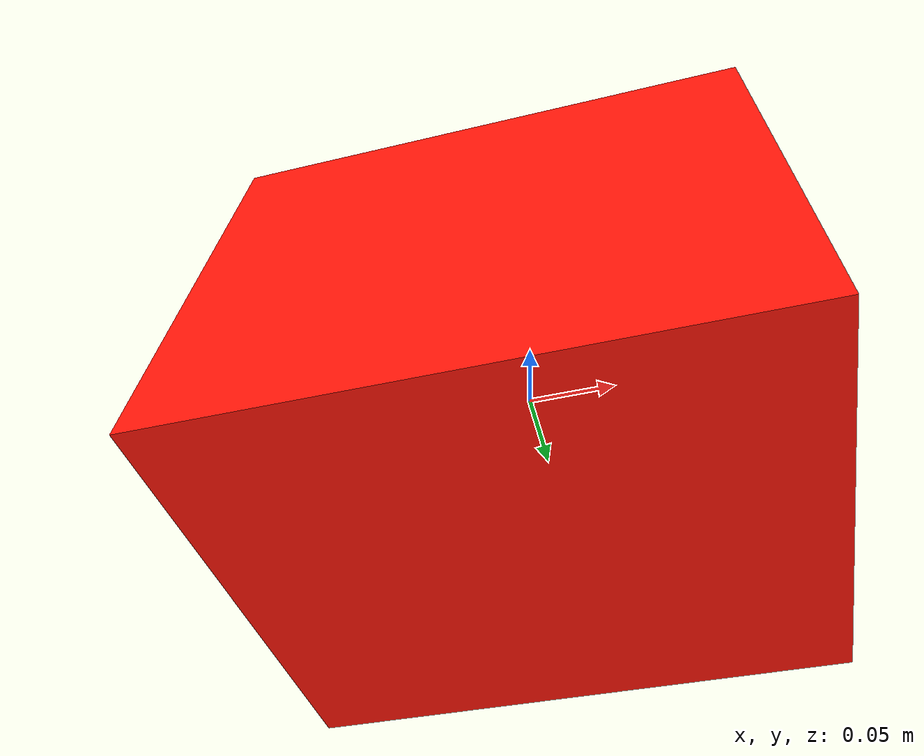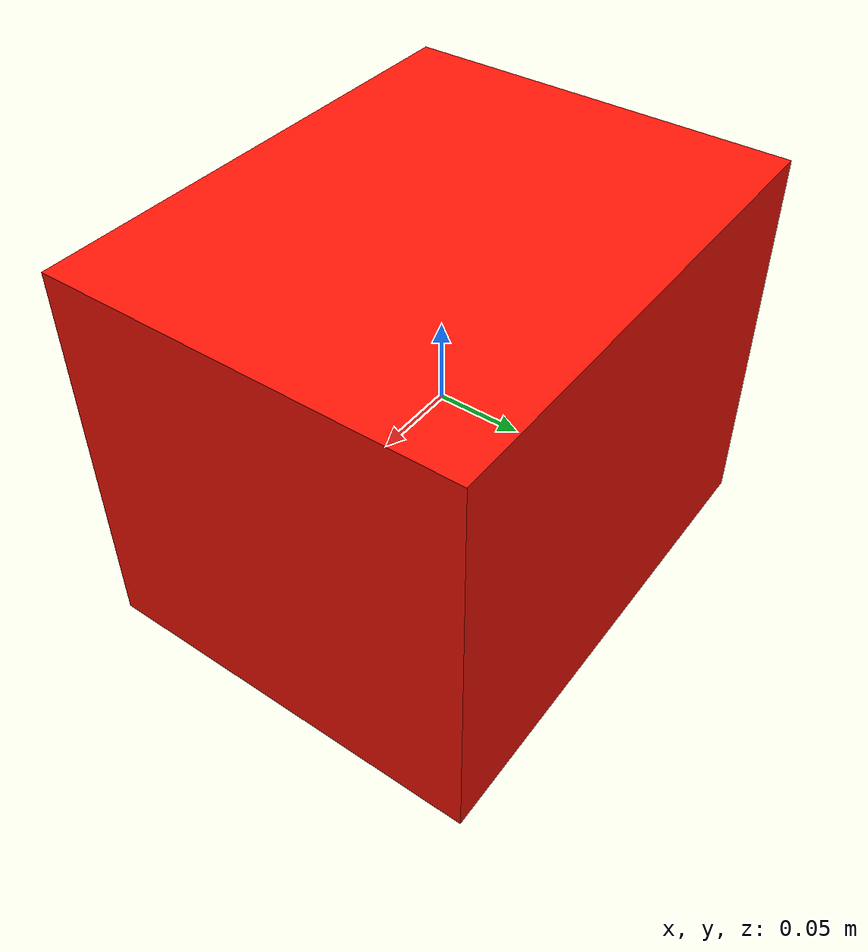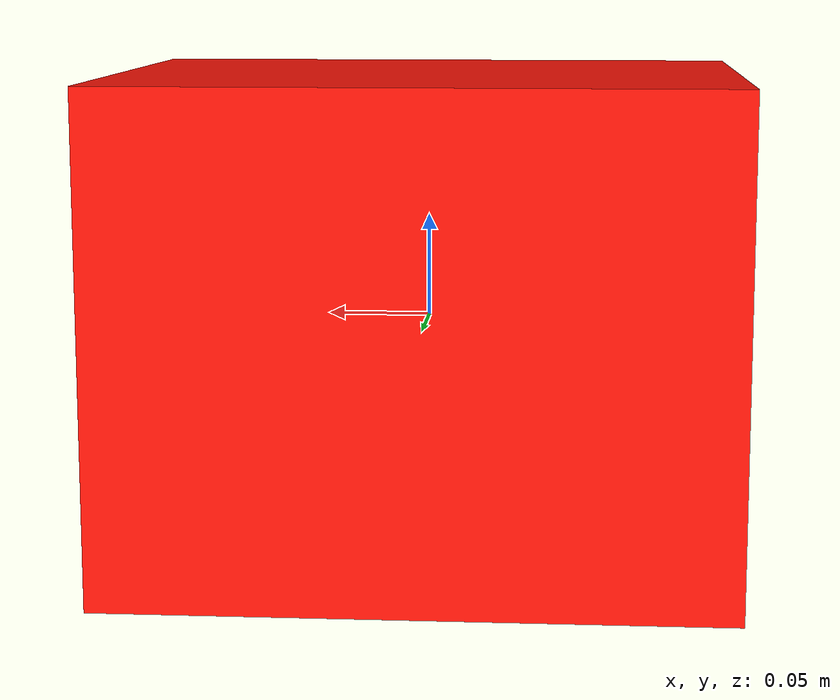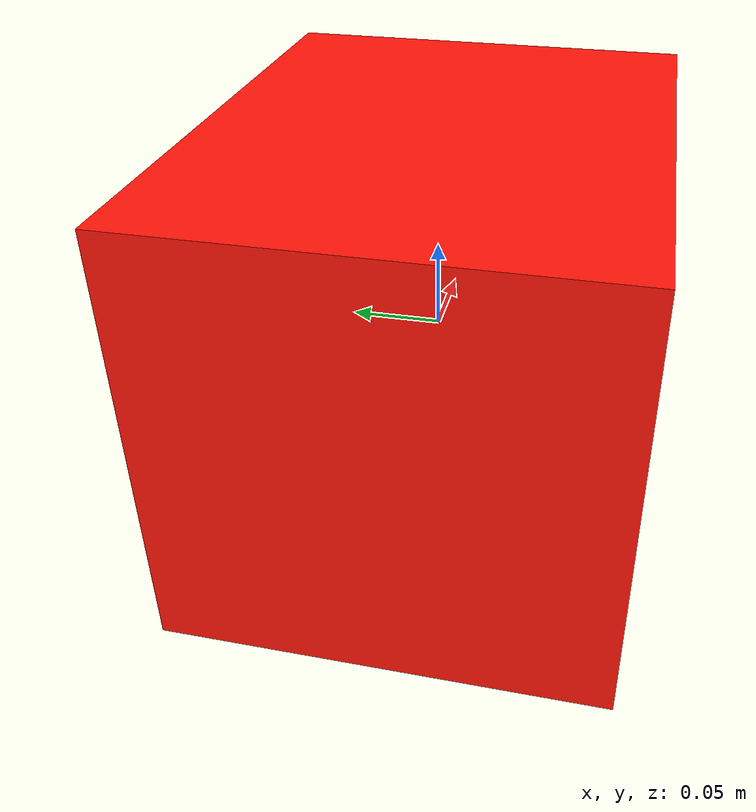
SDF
<?xml version="1.0" ?>
<sdf version="1.9">
  <model name="route_test_obstacle">
    <static>true</static>
    <link name="body">
      <collision name="collision">
        <geometry>
          <box>
            <size>0.30 0.24 0.24</size>
          </box>
        </geometry>
      </collision>
      <visual name="visual">
        <geometry>
          <box>
            <size>0.30 0.24 0.24</size>
          </box>
        </geometry>
        <material>
          <ambient>0.85 0.05 0.03 1</ambient>
          <diffuse>1.0 0.08 0.03 1</diffuse>
          <specular>0.15 0.15 0.15 1</specular>
        </material>
      </visual>
    </link>
  </model>
</sdf>
